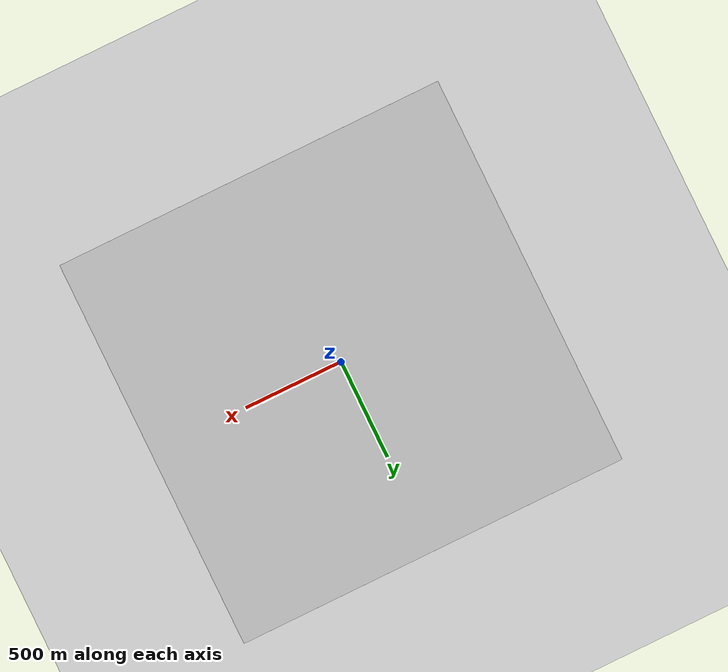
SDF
<sdf version="1.6">
 <world name="empty_underwater">
  <physics name="default_physics" default="1" type="ode">
   <max_step_size>0.002</max_step_size>
   <real_time_factor>1</real_time_factor>
   <real_time_update_rate>500</real_time_update_rate>
   <ode>
    <solver>
     <type>quick</type>
     <iters>50</iters>
     <sor>0.5</sor>
     <use_dynamic_moi_rescaling>0</use_dynamic_moi_rescaling>
    </solver>
    <constraints>
     <cfm>0</cfm>
     <erp>0.2</erp>
     <contact_max_correcting_vel>100</contact_max_correcting_vel>
     <contact_surface_layer>0.001</contact_surface_layer>
    </constraints>
   </ode>
  </physics>
  <scene>
   <ambient>0.01 0.01 0.01 1</ambient>
   <sky><clouds><speed>12</speed></clouds></sky>
   <shadows>1</shadows>
   <fog>
    <color>0.1 0.2 0.3 1</color>
    <type>linear</type>
    <density>0.001</density>
    <start>10</start>
    <end>200</end>
   </fog>
   <background>0.7 0.7 0.7 1</background>
  </scene>
  <spherical_coordinates>
   <latitude_deg>56.719</latitude_deg>
   <longitude_deg>3.51562</longitude_deg>
   <surface_model>EARTH_WGS84</surface_model>
   <elevation>0</elevation>
   <heading_deg>0</heading_deg>
  </spherical_coordinates>
  <light name="sun" type="directional">
   <pose>0 0 10 0 -0 0</pose>
   <diffuse>0.8 0.8 0.8 1</diffuse>
   <specular>0.1 0.1 0.1 1</specular>
   <attenuation>
    <range>1000</range>
    <constant>0.9</constant>
    <linear>0.01</linear>
    <quadratic>0.001</quadratic>
   </attenuation>
   <direction>-0.5 0.5 -1</direction>
  </light>
  <model name="ocean_box">
   <static>1</static>
   <link name="link">
    <visual name="ground">
     <cast_shadows>0</cast_shadows>
     <pose>0 0 -100 0 -0 0</pose>
     <geometry><box><size>2000 2000 0.1</size></box></geometry>
     <material>
      <script>
       <uri>file://Media/materials/scripts/sand.material</uri>
       <name>UUVSimulator/SandAndStones</name>
      </script>
     </material>
    </visual>
    <collision name="ground">
     <pose>0 0 -100 0 -0 0</pose>
     <geometry><box><size>2000 2000 0.1</size></box></geometry>
    </collision>
    <visual name="surface">
     <cast_shadows>0</cast_shadows>
     <geometry><box><size>2000 2000 0.1</size></box></geometry>
     <material>
      <script>
       <uri>file://Media/materials/scripts/water.material</uri>
       <name>UUVSimulator/StaticDeepWater</name>
      </script>
     </material>
    </visual>
    <visual name="north">
     <cast_shadows>0</cast_shadows>
     <pose>1000 0 -50 0 -0 0</pose>
     <geometry><box><size>0.1 2000 100</size></box></geometry>
     <material>
      <script><uri>file://Media/materials/scripts/water.material</uri><name>UUVSimulator/SeaWall</name></script>
     </material>
    </visual>
    <visual name="south">
     <cast_shadows>0</cast_shadows>
     <pose>-1000 0 -50 0 -0 0</pose>
     <geometry><box><size>0.1 2000 100</size></box></geometry>
     <material>
      <script><uri>file://Media/materials/scripts/water.material</uri><name>UUVSimulator/SeaWall</name></script>
     </material>
    </visual>
    <visual name="east">
     <cast_shadows>0</cast_shadows>
     <pose>0 -1000 -50 0 -0 0</pose>
     <geometry><box><size>2000 0.1 100</size></box></geometry>
     <material>
      <script><uri>file://Media/materials/scripts/water.material</uri><name>UUVSimulator/SeaWall</name></script>
     </material>
    </visual>
    <visual name="west">
     <cast_shadows>0</cast_shadows>
     <pose>0 1000 -50 0 -0 0</pose>
     <geometry><box><size>2000 0.1 100</size></box></geometry>
     <material>
      <script><uri>file://Media/materials/scripts/water.material</uri><name>UUVSimulator/SeaWall</name></script>
     </material>
    </visual>
   </link>
  </model>
  <plugin name="underwater_current_plugin" filename="libuuv_underwater_current_ros_plugin.so">
   <namespace>hydrodynamics</namespace>
   <constant_current>
    <topic>current_velocity</topic>
    <velocity><mean>0</mean><min>0</min><max>5</max><mu>0.0</mu><noiseAmp>0.0</noiseAmp></velocity>
    <horizontal_angle>
     <mean>0</mean>
     <min>-3.141592653589793238</min>
     <max>3.141592653589793238</max>
     <mu>0.0</mu>
     <noiseAmp>0.0</noiseAmp>
    </horizontal_angle>
    <vertical_angle>
     <mean>0</mean>
     <min>-3.141592653589793238</min>
     <max>3.141592653589793238</max>
     <mu>0.0</mu>
     <noiseAmp>0.0</noiseAmp>
    </vertical_angle>
   </constant_current>
  </plugin>
  <plugin name="sc_interface" filename="libuuv_sc_ros_interface_plugin.so"/>
  <gravity>0 0 -9.8</gravity>
  <magnetic_field>6e-06 2.3e-05 -4.2e-05</magnetic_field>
  <atmosphere type="adiabatic"/>
  <model name="ground_plane">
   <static>1</static>
   <link name="link">
    <collision name="collision">
     <geometry><plane><normal>0 0 1</normal><size>100 100</size></plane></geometry>
     <surface><friction><ode><mu>100</mu><mu2>50</mu2></ode></friction></surface>
    </collision>
    <visual name="visual">
     <cast_shadows>0</cast_shadows>
     <geometry><plane><normal>0 0 1</normal><size>100 100</size></plane></geometry>
     <material>
      <script><uri>file://media/materials/scripts/gazebo.material</uri><name>Gazebo/Grey</name></script>
     </material>
    </visual>
   </link>
   <pose>0.313623 -0.430269 0 0 -0 0</pose>
  </model>
 </world>
</sdf>
